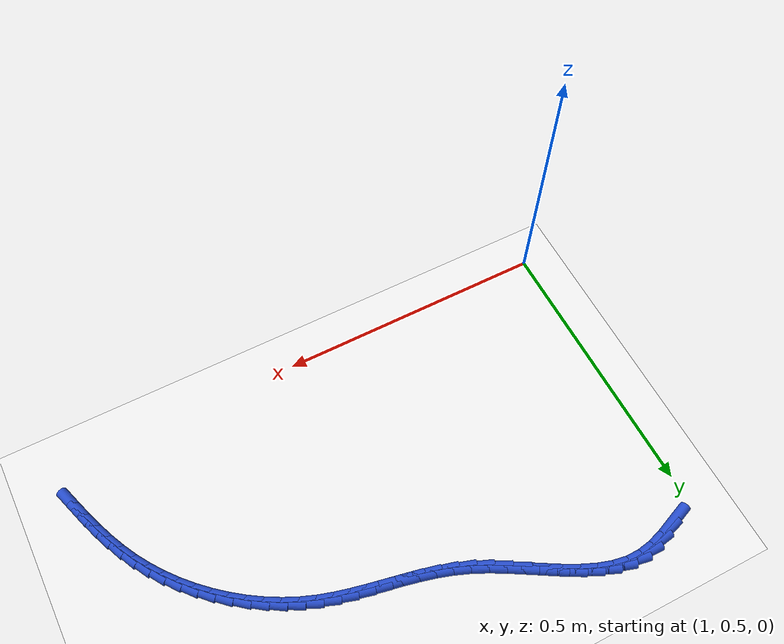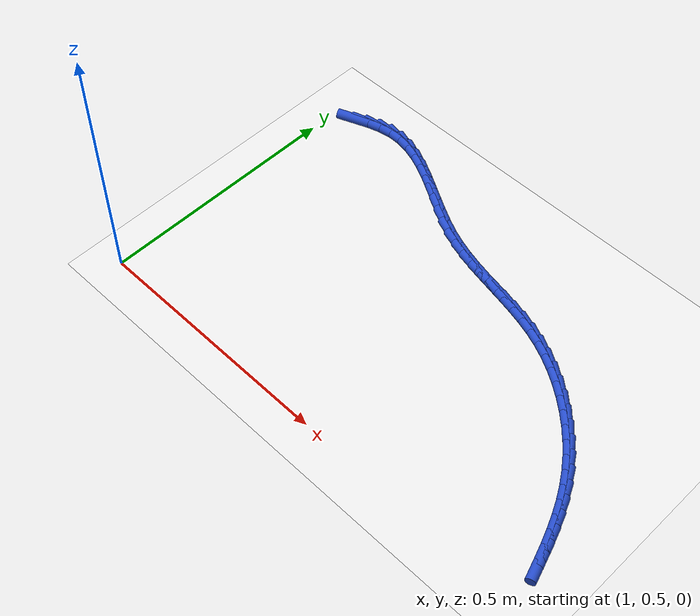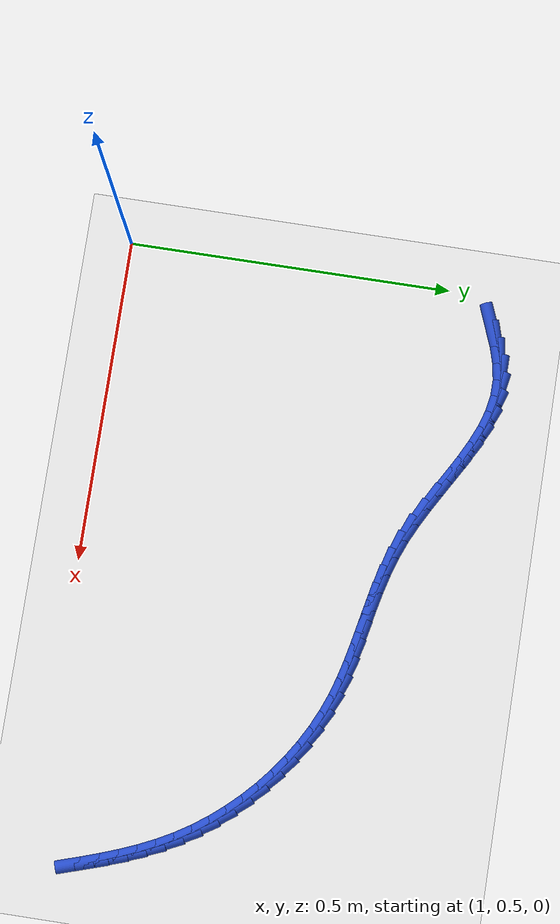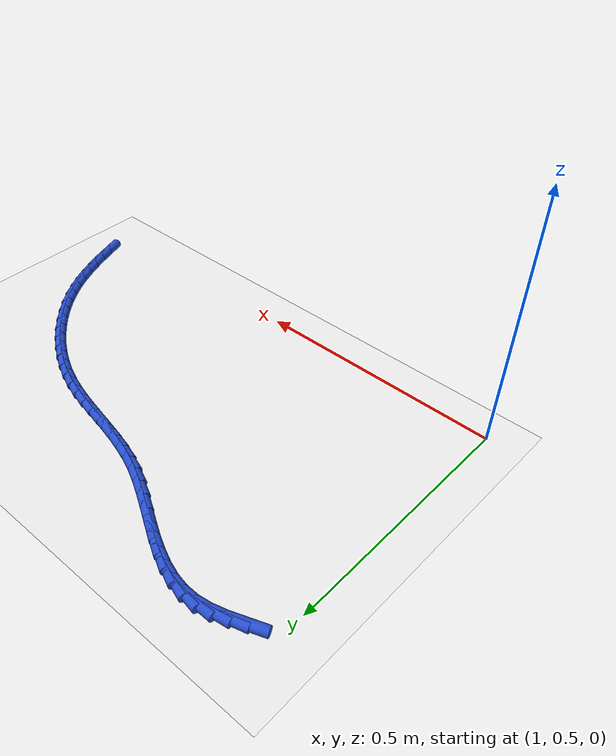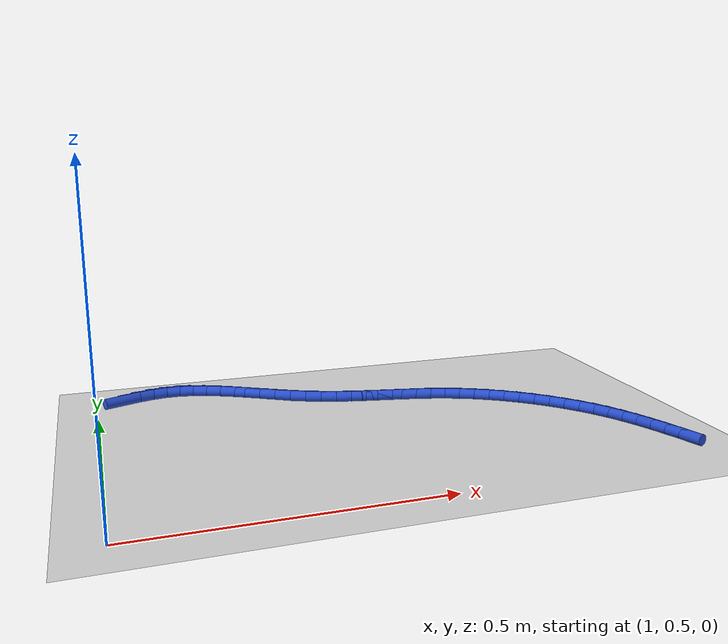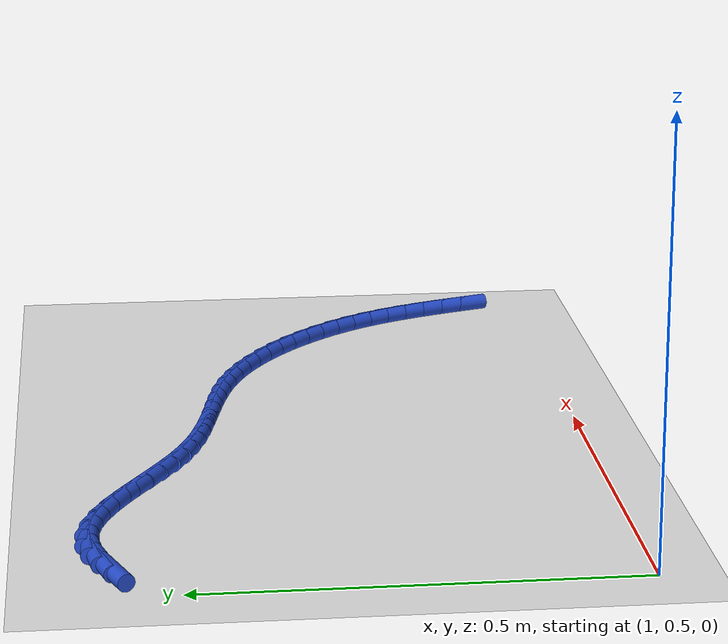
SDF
<sdf version="1.6">
 <world name="default">
  <model name="ground_plane">
   <static>1</static>
   <link name="link">
    <collision name="collision">
     <geometry><plane><normal>0 0 1</normal><size>100 100</size></plane></geometry>
     <surface><friction><ode><mu>100</mu><mu2>50</mu2></ode></friction></surface>
    </collision>
    <visual name="visual">
     <cast_shadows>0</cast_shadows>
     <geometry><plane><normal>0 0 1</normal><size>100 100</size></plane></geometry>
     <material>
      <script><uri>file://media/materials/scripts/gazebo.material</uri><name>Gazebo/WhiteGlow</name></script>
     </material>
    </visual>
   </link>
  </model>
  <model name="line">
   <link name="link_57">
    <pose>1.0511205205601066 1.07286262867159 0.01 0 1.57 0.37479725496185</pose>
    <collision name="collision">
     <geometry><cylinder><radius>0.01</radius><length>0.08</length></cylinder></geometry>
    </collision>
    <visual name="visual">
     <material>
      <script><name>Gazebo/Blue</name><uri>file://media/materials/scripts/gazebo.material</uri></script>
     </material>
     <geometry><cylinder><radius>0.01</radius><length>0.08</length></cylinder></geometry>
    </visual>
   </link>
   <link name="link_58">
    <pose>1.0776597230932128 1.0833029502021994 0.01 0 1.57 0.28693127661629986</pose>
    <collision name="collision">
     <geometry><cylinder><radius>0.01</radius><length>0.08</length></cylinder></geometry>
    </collision>
    <visual name="visual">
     <material>
      <script><name>Gazebo/Blue</name><uri>file://media/materials/scripts/gazebo.material</uri></script>
     </material>
     <geometry><cylinder><radius>0.01</radius><length>0.08</length></cylinder></geometry>
    </visual>
   </link>
   <link name="link_59">
    <pose>1.1039689246909783 1.0910661073431103 0.01 0 1.57 0.15794586720518042</pose>
    <collision name="collision">
     <geometry><cylinder><radius>0.01</radius><length>0.08</length></cylinder></geometry>
    </collision>
    <visual name="visual">
     <material>
      <script><name>Gazebo/Blue</name><uri>file://media/materials/scripts/gazebo.material</uri></script>
     </material>
     <geometry><cylinder><radius>0.01</radius><length>0.08</length></cylinder></geometry>
    </visual>
   </link>
   <link name="link_60">
    <pose>1.1301250318036102 1.0952320566182643 0.01 0 1.57 -0.011005733709864168</pose>
    <collision name="collision">
     <geometry><cylinder><radius>0.01</radius><length>0.08</length></cylinder></geometry>
    </collision>
    <visual name="visual">
     <material>
      <script><name>Gazebo/Blue</name><uri>file://media/materials/scripts/gazebo.material</uri></script>
     </material>
     <geometry><cylinder><radius>0.01</radius><length>0.08</length></cylinder></geometry>
    </visual>
   </link>
   <link name="link_61">
    <pose>1.156203605078673 1.0949450311964084 0.01 0 1.57 -0.1778721566792667</pose>
    <collision name="collision">
     <geometry><cylinder><radius>0.01</radius><length>0.08</length></cylinder></geometry>
    </collision>
    <visual name="visual">
     <material>
      <script><name>Gazebo/Blue</name><uri>file://media/materials/scripts/gazebo.material</uri></script>
     </material>
     <geometry><cylinder><radius>0.01</radius><length>0.08</length></cylinder></geometry>
    </visual>
   </link>
   <link name="link_62">
    <pose>1.182261123567059 1.0902606170497673 0.01 0 1.57 -0.30985496292280185</pose>
    <collision name="collision">
     <geometry><cylinder><radius>0.01</radius><length>0.08</length></cylinder></geometry>
    </collision>
    <visual name="visual">
     <material>
      <script><name>Gazebo/Blue</name><uri>file://media/materials/scripts/gazebo.material</uri></script>
     </material>
     <geometry><cylinder><radius>0.01</radius><length>0.08</length></cylinder></geometry>
    </visual>
   </link>
   <link name="link_63">
    <pose>1.2083398990999827 1.0819110382533577 0.01 0 1.57 -0.40691875857529447</pose>
    <collision name="collision">
     <geometry><cylinder><radius>0.01</radius><length>0.08</length></cylinder></geometry>
    </collision>
    <visual name="visual">
     <material>
      <script><name>Gazebo/Blue</name><uri>file://media/materials/scripts/gazebo.material</uri></script>
     </material>
     <geometry><cylinder><radius>0.01</radius><length>0.08</length></cylinder></geometry>
    </visual>
   </link>
   <link name="link_64">
    <pose>1.2344819079861373 1.070644543714735 0.01 0 1.57 -0.47309838166674767</pose>
    <collision name="collision">
     <geometry><cylinder><radius>0.01</radius><length>0.08</length></cylinder></geometry>
    </collision>
    <visual name="visual">
     <material>
      <script><name>Gazebo/Blue</name><uri>file://media/materials/scripts/gazebo.material</uri></script>
     </material>
     <geometry><cylinder><radius>0.01</radius><length>0.08</length></cylinder></geometry>
    </visual>
   </link>
   <link name="link_65">
    <pose>1.2607291265342149 1.0572093823414515 0.01 0 1.57 -0.5126405852235926</pose>
    <collision name="collision">
     <geometry><cylinder><radius>0.01</radius><length>0.08</length></cylinder></geometry>
    </collision>
    <visual name="visual">
     <material>
      <script><name>Gazebo/Blue</name><uri>file://media/materials/scripts/gazebo.material</uri></script>
     </material>
     <geometry><cylinder><radius>0.01</radius><length>0.08</length></cylinder></geometry>
    </visual>
   </link>
   <link name="link_66">
    <pose>1.2871235310529077 1.0423538030410615 0.01 0 1.57 -0.5286543267103231</pose>
    <collision name="collision">
     <geometry><cylinder><radius>0.01</radius><length>0.08</length></cylinder></geometry>
    </collision>
    <visual name="visual">
     <material>
      <script><name>Gazebo/Blue</name><uri>file://media/materials/scripts/gazebo.material</uri></script>
     </material>
     <geometry><cylinder><radius>0.01</radius><length>0.08</length></cylinder></geometry>
    </visual>
   </link>
   <link name="link_67">
    <pose>1.3137070978509087 1.026826054721119 0.01 0 1.57 -0.5227646263104361</pose>
    <collision name="collision">
     <geometry><cylinder><radius>0.01</radius><length>0.08</length></cylinder></geometry>
    </collision>
    <visual name="visual">
     <material>
      <script><name>Gazebo/Blue</name><uri>file://media/materials/scripts/gazebo.material</uri></script>
     </material>
     <geometry><cylinder><radius>0.01</radius><length>0.08</length></cylinder></geometry>
    </visual>
   </link>
   <link name="link_68">
    <pose>1.3405218032369104 1.0113743862891773 0.01 0 1.57 -0.49513088209074785</pose>
    <collision name="collision">
     <geometry><cylinder><radius>0.01</radius><length>0.08</length></cylinder></geometry>
    </collision>
    <visual name="visual">
     <material>
      <script><name>Gazebo/Blue</name><uri>file://media/materials/scripts/gazebo.material</uri></script>
     </material>
     <geometry><cylinder><radius>0.01</radius><length>0.08</length></cylinder></geometry>
    </visual>
   </link>
   <link name="link_69">
    <pose>1.3676096235196056 0.9967470466527906 0.01 0 1.57 -0.44459043400425724</pose>
    <collision name="collision">
     <geometry><cylinder><radius>0.01</radius><length>0.08</length></cylinder></geometry>
    </collision>
    <visual name="visual">
     <material>
      <script><name>Gazebo/Blue</name><uri>file://media/materials/scripts/gazebo.material</uri></script>
     </material>
     <geometry><cylinder><radius>0.01</radius><length>0.08</length></cylinder></geometry>
    </visual>
   </link>
   <link name="link_70">
    <pose>1.3950125350076865 0.9836922847195123 0.01 0 1.57 -0.37318777301353545</pose>
    <collision name="collision">
     <geometry><cylinder><radius>0.01</radius><length>0.08</length></cylinder></geometry>
    </collision>
    <visual name="visual">
     <material>
      <script><name>Gazebo/Blue</name><uri>file://media/materials/scripts/gazebo.material</uri></script>
     </material>
     <geometry><cylinder><radius>0.01</radius><length>0.08</length></cylinder></geometry>
    </visual>
   </link>
   <link name="link_71">
    <pose>1.4227585056422307 0.9728287647541558 0.01 0 1.57 -0.30600332045393325</pose>
    <collision name="collision">
     <geometry><cylinder><radius>0.01</radius><length>0.08</length></cylinder></geometry>
    </collision>
    <visual name="visual">
     <material>
      <script><name>Gazebo/Blue</name><uri>file://media/materials/scripts/gazebo.material</uri></script>
     </material>
     <geometry><cylinder><radius>0.01</radius><length>0.08</length></cylinder></geometry>
    </visual>
   </link>
   <link name="link_72">
    <pose>1.4507888163502038 0.9639732513239286 0.01 0 1.57 -0.2543410759152054</pose>
    <collision name="collision">
     <geometry><cylinder><radius>0.01</radius><length>0.08</length></cylinder></geometry>
    </collision>
    <visual name="visual">
     <material>
      <script><name>Gazebo/Blue</name><uri>file://media/materials/scripts/gazebo.material</uri></script>
     </material>
     <geometry><cylinder><radius>0.01</radius><length>0.08</length></cylinder></geometry>
    </visual>
   </link>
   <link name="link_73">
    <pose>1.4790116282064136 0.9566361332406801 0.01 0 1.57 -0.21916873059317224</pose>
    <collision name="collision">
     <geometry><cylinder><radius>0.01</radius><length>0.08</length></cylinder></geometry>
    </collision>
    <visual name="visual">
     <material>
      <script><name>Gazebo/Blue</name><uri>file://media/materials/scripts/gazebo.material</uri></script>
     </material>
     <geometry><cylinder><radius>0.01</radius><length>0.08</length></cylinder></geometry>
    </visual>
   </link>
   <link name="link_74">
    <pose>1.5073350360190434 0.9503271863157113 0.01 0 1.57 -0.20094228515973792</pose>
    <collision name="collision">
     <geometry><cylinder><radius>0.01</radius><length>0.08</length></cylinder></geometry>
    </collision>
    <visual name="visual">
     <material>
      <script><name>Gazebo/Blue</name><uri>file://media/materials/scripts/gazebo.material</uri></script>
     </material>
     <geometry><cylinder><radius>0.01</radius><length>0.08</length></cylinder></geometry>
    </visual>
   </link>
   <link name="link_75">
    <pose>1.5356671345962758 0.9445561863603242 0.01 0 1.57 -0.19989611583409328</pose>
    <collision name="collision">
     <geometry><cylinder><radius>0.01</radius><length>0.08</length></cylinder></geometry>
    </collision>
    <visual name="visual">
     <material>
      <script><name>Gazebo/Blue</name><uri>file://media/materials/scripts/gazebo.material</uri></script>
     </material>
     <geometry><cylinder><radius>0.01</radius><length>0.08</length></cylinder></geometry>
    </visual>
   </link>
   <link name="link_76">
    <pose>1.5639160187462942 0.9388329091858204 0.01 0 1.57 -0.21619524108455884</pose>
    <collision name="collision">
     <geometry><cylinder><radius>0.01</radius><length>0.08</length></cylinder></geometry>
    </collision>
    <visual name="visual">
     <material>
      <script><name>Gazebo/Blue</name><uri>file://media/materials/scripts/gazebo.material</uri></script>
     </material>
     <geometry><cylinder><radius>0.01</radius><length>0.08</length></cylinder></geometry>
    </visual>
   </link>
   <link name="link_77">
    <pose>1.591989783277281 0.932667130603501 0.01 0 1.57 -0.24994185665946878</pose>
    <collision name="collision">
     <geometry><cylinder><radius>0.01</radius><length>0.08</length></cylinder></geometry>
    </collision>
    <visual name="visual">
     <material>
      <script><name>Gazebo/Blue</name><uri>file://media/materials/scripts/gazebo.material</uri></script>
     </material>
     <geometry><cylinder><radius>0.01</radius><length>0.08</length></cylinder></geometry>
    </visual>
   </link>
   <link name="link_78">
    <pose>1.6197965229974192 0.9255686264246678 0.01 0 1.57 -0.3010255164171406</pose>
    <collision name="collision">
     <geometry><cylinder><radius>0.01</radius><length>0.08</length></cylinder></geometry>
    </collision>
    <visual name="visual">
     <material>
      <script><name>Gazebo/Blue</name><uri>file://media/materials/scripts/gazebo.material</uri></script>
     </material>
     <geometry><cylinder><radius>0.01</radius><length>0.08</length></cylinder></geometry>
    </visual>
   </link>
   <link name="link_79">
    <pose>1.6472443327148922 0.9170471724606224 0.01 0 1.57 -0.3678286750088544</pose>
    <collision name="collision">
     <geometry><cylinder><radius>0.01</radius><length>0.08</length></cylinder></geometry>
    </collision>
    <visual name="visual">
     <material>
      <script><name>Gazebo/Blue</name><uri>file://media/materials/scripts/gazebo.material</uri></script>
     </material>
     <geometry><cylinder><radius>0.01</radius><length>0.08</length></cylinder></geometry>
    </visual>
   </link>
   <link name="link_80">
    <pose>1.6742393775362943 0.9066441653215893 0.01 0 1.57 -0.438322642902776</pose>
    <collision name="collision">
     <geometry><cylinder><radius>0.01</radius><length>0.08</length></cylinder></geometry>
    </collision>
    <visual name="visual">
     <material>
      <script><name>Gazebo/Blue</name><uri>file://media/materials/scripts/gazebo.material</uri></script>
     </material>
     <geometry><cylinder><radius>0.01</radius><length>0.08</length></cylinder></geometry>
    </visual>
   </link>
   <link name="link_81">
    <pose>1.700666091697527 0.8942570916458843 0.01 0 1.57 -0.5057701317656847</pose>
    <collision name="collision">
     <geometry><cylinder><radius>0.01</radius><length>0.08</length></cylinder></geometry>
    </collision>
    <visual name="visual">
     <material>
      <script><name>Gazebo/Blue</name><uri>file://media/materials/scripts/gazebo.material</uri></script>
     </material>
     <geometry><cylinder><radius>0.01</radius><length>0.08</length></cylinder></geometry>
    </visual>
   </link>
   <link name="link_82">
    <pose>1.7263952157718183 0.8800078274575265 0.01 0 1.57 -0.5707008574044959</pose>
    <collision name="collision">
     <geometry><cylinder><radius>0.01</radius><length>0.08</length></cylinder></geometry>
    </collision>
    <visual name="visual">
     <material>
      <script><name>Gazebo/Blue</name><uri>file://media/materials/scripts/gazebo.material</uri></script>
     </material>
     <geometry><cylinder><radius>0.01</radius><length>0.08</length></cylinder></geometry>
    </visual>
   </link>
   <link name="link_83">
    <pose>1.75129727632473 0.864021755588756 0.01 0 1.57 -0.6337650006991156</pose>
    <collision name="collision">
     <geometry><cylinder><radius>0.01</radius><length>0.08</length></cylinder></geometry>
    </collision>
    <visual name="visual">
     <material>
      <script><name>Gazebo/Blue</name><uri>file://media/materials/scripts/gazebo.material</uri></script>
     </material>
     <geometry><cylinder><radius>0.01</radius><length>0.08</length></cylinder></geometry>
    </visual>
   </link>
   <link name="link_84">
    <pose>1.7752427999218239 0.8464242588718125 0.01 0 1.57 -0.6956139787007518</pose>
    <collision name="collision">
     <geometry><cylinder><radius>0.01</radius><length>0.08</length></cylinder></geometry>
    </collision>
    <visual name="visual">
     <material>
      <script><name>Gazebo/Blue</name><uri>file://media/materials/scripts/gazebo.material</uri></script>
     </material>
     <geometry><cylinder><radius>0.01</radius><length>0.08</length></cylinder></geometry>
    </visual>
   </link>
   <link name="link_85">
    <pose>1.7981023131286622 0.8273407201389351 0.01 0 1.57 -0.756898350626381</pose>
    <collision name="collision">
     <geometry><cylinder><radius>0.01</radius><length>0.08</length></cylinder></geometry>
    </collision>
    <visual name="visual">
     <material>
      <script><name>Gazebo/Blue</name><uri>file://media/materials/scripts/gazebo.material</uri></script>
     </material>
     <geometry><cylinder><radius>0.01</radius><length>0.08</length></cylinder></geometry>
    </visual>
   </link>
   <link name="link_86">
    <pose>1.8197463425108056 0.8068965222223641 0.01 0 1.57 -0.8182698331314612</pose>
    <collision name="collision">
     <geometry><cylinder><radius>0.01</radius><length>0.08</length></cylinder></geometry>
    </collision>
    <visual name="visual">
     <material>
      <script><name>Gazebo/Blue</name><uri>file://media/materials/scripts/gazebo.material</uri></script>
     </material>
     <geometry><cylinder><radius>0.01</radius><length>0.08</length></cylinder></geometry>
    </visual>
   </link>
   <link name="link_87">
    <pose>1.8400454146338168 0.7852170479543387 0.01 0 1.57 -0.8803852907459322</pose>
    <collision name="collision">
     <geometry><cylinder><radius>0.01</radius><length>0.08</length></cylinder></geometry>
    </collision>
    <visual name="visual">
     <material>
      <script><name>Gazebo/Blue</name><uri>file://media/materials/scripts/gazebo.material</uri></script>
     </material>
     <geometry><cylinder><radius>0.01</radius><length>0.08</length></cylinder></geometry>
    </visual>
   </link>
   <link name="link_88">
    <pose>1.8588700560632572 0.7624276801670983 0.01 0 1.57 -0.9439107779517928</pose>
    <collision name="collision">
     <geometry><cylinder><radius>0.01</radius><length>0.08</length></cylinder></geometry>
    </collision>
    <visual name="visual">
     <material>
      <script><name>Gazebo/Blue</name><uri>file://media/materials/scripts/gazebo.material</uri></script>
     </material>
     <geometry><cylinder><radius>0.01</radius><length>0.08</length></cylinder></geometry>
    </visual>
   </link>
   <link name="link_89">
    <pose>1.8760907933646884 0.7386538016928831 0.01 0 1.57 -1.0095049468773025</pose>
    <collision name="collision">
     <geometry><cylinder><radius>0.01</radius><length>0.08</length></cylinder></geometry>
    </collision>
    <visual name="visual">
     <material>
      <script><name>Gazebo/Blue</name><uri>file://media/materials/scripts/gazebo.material</uri></script>
     </material>
     <geometry><cylinder><radius>0.01</radius><length>0.08</length></cylinder></geometry>
    </visual>
   </link>
   <link name="link_90">
    <pose>1.8915788232707322 0.714020750997886 0.01 0 1.57 -1.0743940972228607</pose>
    <collision name="collision">
     <geometry><cylinder><radius>0.01</radius><length>0.08</length></cylinder></geometry>
    </collision>
    <visual name="visual">
     <material>
      <script><name>Gazebo/Blue</name><uri>file://media/materials/scripts/gazebo.material</uri></script>
     </material>
     <geometry><cylinder><radius>0.01</radius><length>0.08</length></cylinder></geometry>
    </visual>
   </link>
   <link name="link_91">
    <pose>1.9053227557741246 0.6886460936176467 0.01 0 1.57 -1.131056651782604</pose>
    <collision name="collision">
     <geometry><cylinder><radius>0.01</radius><length>0.08</length></cylinder></geometry>
    </collision>
    <visual name="visual">
     <material>
      <script><name>Gazebo/Blue</name><uri>file://media/materials/scripts/gazebo.material</uri></script>
     </material>
     <geometry><cylinder><radius>0.01</radius><length>0.08</length></cylinder></geometry>
    </visual>
   </link>
   <link name="link_92">
    <pose>1.9175619802350445 0.6626307931244241 0.01 0 1.57 -1.1779091803325836</pose>
    <collision name="collision">
     <geometry><cylinder><radius>0.01</radius><length>0.08</length></cylinder></geometry>
    </collision>
    <visual name="visual">
     <material>
      <script><name>Gazebo/Blue</name><uri>file://media/materials/scripts/gazebo.material</uri></script>
     </material>
     <geometry><cylinder><radius>0.01</radius><length>0.08</length></cylinder></geometry>
    </visual>
   </link>
   <link name="link_93">
    <pose>1.9285681496598839 0.6360736771896065 0.01 0 1.57 -1.2146346725230834</pose>
    <collision name="collision">
     <geometry><cylinder><radius>0.01</radius><length>0.08</length></cylinder></geometry>
    </collision>
    <visual name="visual">
     <material>
      <script><name>Gazebo/Blue</name><uri>file://media/materials/scripts/gazebo.material</uri></script>
     </material>
     <geometry><cylinder><radius>0.01</radius><length>0.08</length></cylinder></geometry>
    </visual>
   </link>
   <link name="link_94">
    <pose>1.9386129170550348 0.6090735734845804 0.01 0 1.57 -1.2411587646257574</pose>
    <collision name="collision">
     <geometry><cylinder><radius>0.01</radius><length>0.08</length></cylinder></geometry>
    </collision>
    <visual name="visual">
     <material>
      <script><name>Gazebo/Blue</name><uri>file://media/materials/scripts/gazebo.material</uri></script>
     </material>
     <geometry><cylinder><radius>0.01</radius><length>0.08</length></cylinder></geometry>
    </visual>
   </link>
   <link name="link_95">
    <pose>1.947967935426889 0.5817293096807344 0.01 0 1.57 -1.2575382690348067</pose>
    <collision name="collision">
     <geometry><cylinder><radius>0.01</radius><length>0.08</length></cylinder></geometry>
    </collision>
    <visual name="visual">
     <material>
      <script><name>Gazebo/Blue</name><uri>file://media/materials/scripts/gazebo.material</uri></script>
     </material>
     <geometry><cylinder><radius>0.01</radius><length>0.08</length></cylinder></geometry>
    </visual>
   </link>
  </model>
 </world>
</sdf>
